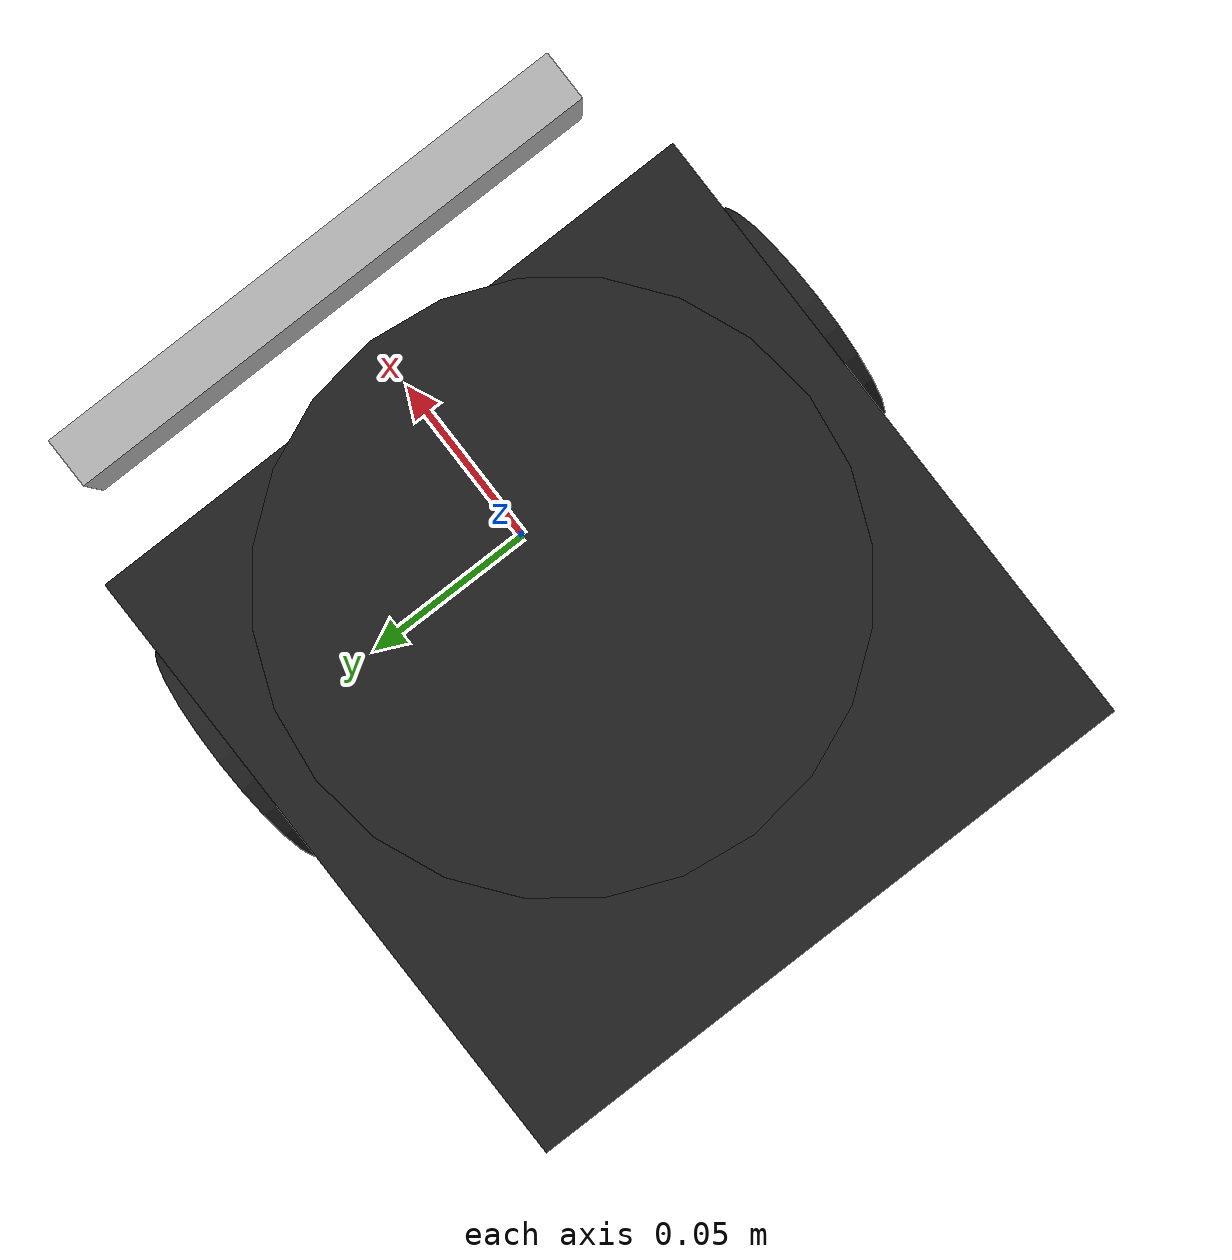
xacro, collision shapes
<?xml version="1.0"?>
<robot name="turtlebot3_burger_with_realsense" xmlns:xacro="http://ros.org/wiki/xacro">

  <xacro:include filename="$(find turtlebot3_description)/urdf/turtlebot3_burger.urdf.xacro"/>
  <xacro:property name="camera_height" value="0.105"/>

  <material name="gray">
    <color rgba="0.5 0.5 0.5 1.0"/>
  </material>

  <joint name="realsense_joint" type="fixed">
    <parent link="base_link"/>
    <child  link="realsense_link"/>
    <origin xyz="0.013 0 ${camera_height}" rpy="0 0 0"/>
  </joint>

  <link name="realsense_link">
    <visual>
      <origin xyz="0 0 0" rpy="0 0 0"/>
      <geometry>
        <box size="0.02 0.02 0.02"/>
      </geometry>
      <material name="gray"/>
    </visual>
    <collision>
      <origin xyz="0 0 0" rpy="0 0 0"/>
      <geometry>
        <box size="0 0 0"/>
      </geometry>
    </collision>
    <inertial>
      <origin xyz="0 0 0"/>
      <mass value="0.1"/>
      <inertia ixx="0.0001" iyy="0.0001" izz="0.0001" ixy="0" ixz="0" iyz="0"/>
    </inertial>
  </link>

  <link name="realsense_link_optical"/>

  <joint name="realsense_optical_joint" type="fixed">
    <parent link="realsense_link"/>
    <child  link="realsense_link_optical"/>
    <!-- -90° about X then -90° about Z -->
    <origin xyz="0 0 0" rpy="-1.5708 0 -1.5708"/>
  </joint>

  <gazebo reference="realsense_link">
    <sensor name="depth_camera" type="depth">
      <always_on>true</always_on>
      <update_rate>30.0</update_rate>
      <visualize>true</visualize>
      <pose>0 0 0.015 0 0 0</pose>

      <camera>
        <horizontal_fov>1.047</horizontal_fov>
        <image>
          <width>640</width>
          <height>480</height>
          <format>R8G8B8</format>
        </image>
        <clip>
          <near>0.1</near>
          <far>10.0</far>
        </clip>
      </camera>

      <plugin name="depth_camera_controller" filename="libgazebo_ros_openni_kinect.so">
        <alwaysOn>true</alwaysOn>
        <updateRate>30.0</updateRate>

        <!-- topic roots -->
        <cameraName>camera</cameraName>
        <imageTopicName>image_raw</imageTopicName>
        <depthImageTopicName>depth/image_raw</depthImageTopicName>
        <cameraInfoTopicName>camera_info</cameraInfoTopicName>
        <depthCameraInfoTopicName>depth/camera_info</depthCameraInfoTopicName>

        <!-- publish images in the optical frame -->
        <frameName>realsense_link_optical</frameName>
      </plugin>
    </sensor>
  </gazebo>

  <gazebo reference="realsense_link">
    <material>Gazebo/Grey</material>
  </gazebo>

</robot>

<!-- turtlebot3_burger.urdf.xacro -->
<robot name="turtlebot3_burger" xmlns:xacro="http://ros.org/wiki/xacro">
  <xacro:include filename="$(find turtlebot3_description)/urdf/common_properties.xacro"/>
  <xacro:include filename="$(find turtlebot3_description)/urdf/turtlebot3_burger.gazebo.xacro"/>
  <xacro:property name="r200_cam_rgb_px" value="0.005"/>
  <xacro:property name="r200_cam_rgb_py" value="0.018"/>
  <xacro:property name="r200_cam_rgb_pz" value="0.013"/>
  <xacro:property name="r200_cam_depth_offset" value="0.01"/>

  <link name="base_footprint"/>

  <joint name="base_joint" type="fixed">
    <parent link="base_footprint"/>
    <child link="base_link"/>
    <origin xyz="0.0 0.0 0.010" rpy="0 0 0"/>
  </joint>

  <link name="base_link">
    <visual>
      <origin xyz="-0.032 0 0.0" rpy="0 0 0"/>
      <geometry>
        <mesh filename="package://turtlebot3_description/meshes/bases/burger_base.stl" scale="0.001 0.001 0.001"/>
      </geometry>
      <material name="light_black"/>
    </visual>

    <collision>
      <origin xyz="-0.032 0 0.070" rpy="0 0 0"/>
      <geometry>
        <box size="0.140 0.140 0.143"/>
      </geometry>
    </collision>

    <inertial>
      <origin xyz="0 0 0" rpy="0 0 0"/>
      <mass value="8.2573504e-01"/>
      <inertia ixx="2.2124416e-03" ixy="-1.2294101e-05" ixz="3.4938785e-05"
               iyy="2.1193702e-03" iyz="-5.0120904e-06"
               izz="2.0064271e-03" />
    </inertial>
  </link>

  <joint name="wheel_left_joint" type="continuous">
    <parent link="base_link"/>
    <child link="wheel_left_link"/>
    <origin xyz="0.0 0.08 0.023" rpy="-1.57 0 0"/>
    <axis xyz="0 0 1"/>
  </joint>

  <link name="wheel_left_link">
    <visual>
      <origin xyz="0 0 0" rpy="1.57 0 0"/>
      <geometry>
        <mesh filename="package://turtlebot3_description/meshes/wheels/left_tire.stl" scale="0.001 0.001 0.001"/>
      </geometry>
      <material name="dark"/>
    </visual>

    <collision>
      <origin xyz="0 0 0" rpy="0 0 0"/>
      <geometry>
        <cylinder length="0.018" radius="0.033"/>
      </geometry>
    </collision>

    <inertial>
      <origin xyz="0 0 0" />
      <mass value="2.8498940e-02" />
      <inertia ixx="1.1175580e-05" ixy="-4.2369783e-11" ixz="-5.9381719e-09"
               iyy="1.1192413e-05" iyz="-1.4400107e-11"
               izz="2.0712558e-05" />
      </inertial>
  </link>

  <joint name="wheel_right_joint" type="continuous">
    <parent link="base_link"/>
    <child link="wheel_right_link"/>
    <origin xyz="0.0 -0.080 0.023" rpy="-1.57 0 0"/>
    <axis xyz="0 0 1"/>
  </joint>

  <link name="wheel_right_link">
    <visual>
      <origin xyz="0 0 0" rpy="1.57 0 0"/>
      <geometry>
        <mesh filename="package://turtlebot3_description/meshes/wheels/right_tire.stl" scale="0.001 0.001 0.001"/>
      </geometry>
      <material name="dark"/>
    </visual>

    <collision>
      <origin xyz="0 0 0" rpy="0 0 0"/>
      <geometry>
        <cylinder length="0.018" radius="0.033"/>
      </geometry>
    </collision>

    <inertial>
      <origin xyz="0 0 0" />
      <mass value="2.8498940e-02" />
      <inertia ixx="1.1175580e-05" ixy="-4.2369783e-11" ixz="-5.9381719e-09"
               iyy="1.1192413e-05" iyz="-1.4400107e-11"
               izz="2.0712558e-05" />
      </inertial>
  </link>

  <joint name="caster_back_joint" type="fixed">
    <parent link="base_link"/>
    <child link="caster_back_link"/>
    <origin xyz="-0.081 0 -0.004" rpy="-1.57 0 0"/>
  </joint>

  <link name="caster_back_link">
    <collision>
      <origin xyz="0 0.001 0" rpy="0 0 0"/>
      <geometry>
        <box size="0.030 0.009 0.020"/>
      </geometry>
    </collision>

    <inertial>
      <origin xyz="0 0 0" />
      <mass value="0.005" />
      <inertia ixx="0.001" ixy="0.0" ixz="0.0"
               iyy="0.001" iyz="0.0"
               izz="0.001" />
    </inertial>
  </link>

  <joint name="imu_joint" type="fixed">
    <parent link="base_link"/>
    <child link="imu_link"/>
    <origin xyz="-0.032 0 0.068" rpy="0 0 0"/>
  </joint>

  <link name="imu_link"/>

  <joint name="scan_joint" type="fixed">
    <parent link="base_link"/>
    <child link="base_scan"/>
    <origin xyz="-0.032 0 0.172" rpy="0 0 0"/>
  </joint>

  <link name="base_scan">
    <visual>
      <origin xyz="0 0 0.0" rpy="0 0 0"/>
      <geometry>
        <mesh filename="package://turtlebot3_description/meshes/sensors/lds.stl" scale="0.001 0.001 0.001"/>
      </geometry>
      <material name="dark"/>
    </visual>

    <collision>
      <origin xyz="0.015 0 -0.0065" rpy="0 0 0"/>
      <geometry>
        <cylinder length="0.0315" radius="0.055"/>
      </geometry>
    </collision>

    <inertial>
      <mass value="0.114" />
      <origin xyz="0 0 0" />
      <inertia ixx="0.001" ixy="0.0" ixz="0.0"
               iyy="0.001" iyz="0.0"
               izz="0.001" />
    </inertial>
</link>

  <joint name="camera_joint" type="fixed">
    <origin xyz="0.064 -0.065 0.094" rpy="0 0 0"/>
    <parent link="base_link"/>
    <child link="camera_link"/>
  </joint>

  <link name="camera_link">
    <visual>
     <origin xyz="0 0 0" rpy="1.57 0 1.57"/>
      <geometry>
       <mesh filename="package://turtlebot3_description/meshes/sensors/r200.dae" />
      </geometry>
    </visual>
    <collision>
      <origin xyz="0.003 0.065 0.007" rpy="0 0 0"/>
      <geometry>
        <box size="0.012 0.132 0.020"/>
      </geometry>
    </collision>

    <!-- This inertial field needs doesn't contain reliable data!! -->
  </link>

  <joint name="camera_rgb_joint" type="fixed">
    <origin xyz="${r200_cam_rgb_px} ${r200_cam_rgb_py} ${r200_cam_rgb_pz + 0.013}" rpy="0 0 0"/>
    <parent link="camera_link"/>
    <child link="camera_rgb_frame"/>
  </joint>
  <link name="camera_rgb_frame"/>

  <joint name="camera_rgb_optical_joint" type="fixed">
    <origin xyz="0 0 0" rpy="-1.57 0 -1.57"/>
    <parent link="camera_rgb_frame"/>
    <child link="camera_rgb_optical_frame"/>
  </joint>
  <link name="camera_rgb_optical_frame"/>

  <joint name="camera_depth_joint" type="fixed">
    <origin xyz="${r200_cam_rgb_px} ${r200_cam_rgb_py + r200_cam_depth_offset} ${r200_cam_rgb_pz}" rpy="0 0 0"/>
    <parent link="camera_link"/>
    <child link="camera_depth_frame"/>
  </joint>
  <link name="camera_depth_frame"/>

  <joint name="camera_depth_optical_joint" type="fixed">
    <origin xyz="0 0 0" rpy="-1.57 0 -1.57"/>
    <parent link="camera_depth_frame"/>
    <child link="camera_depth_optical_frame"/>
  </joint>
  <link name="camera_depth_optical_frame"/>

</robot>
